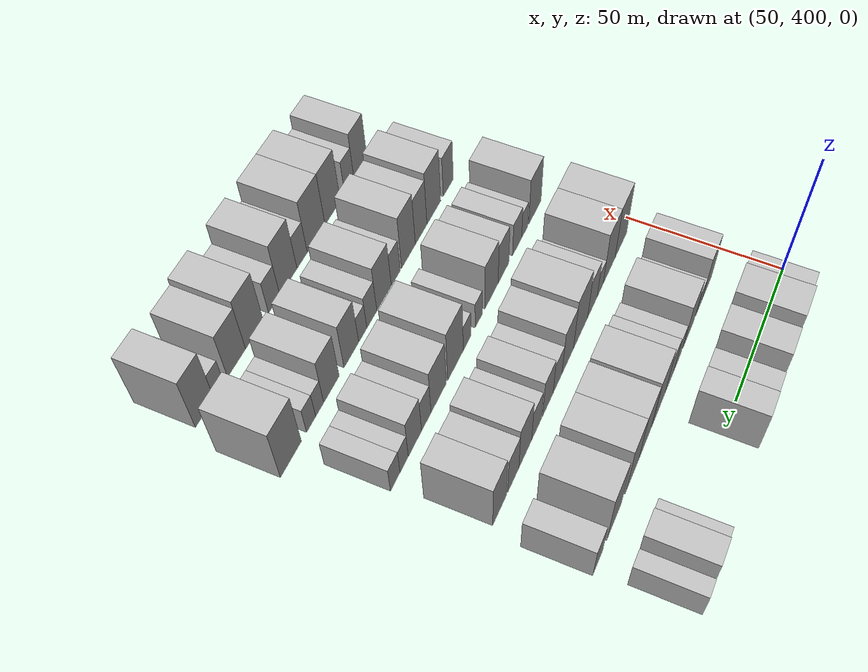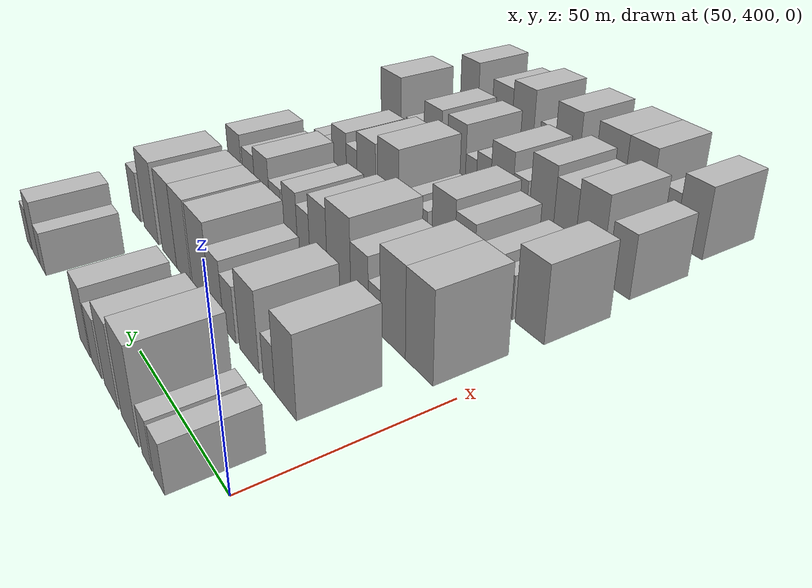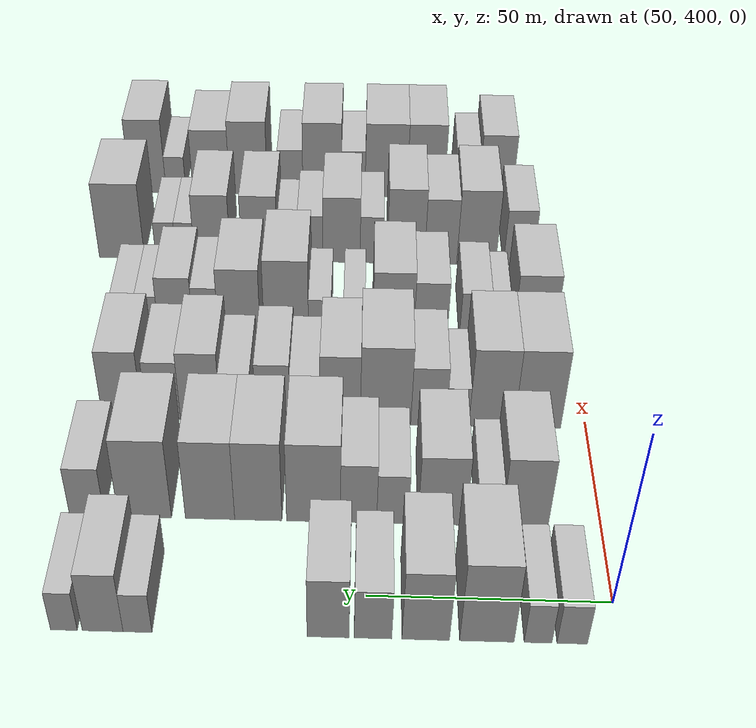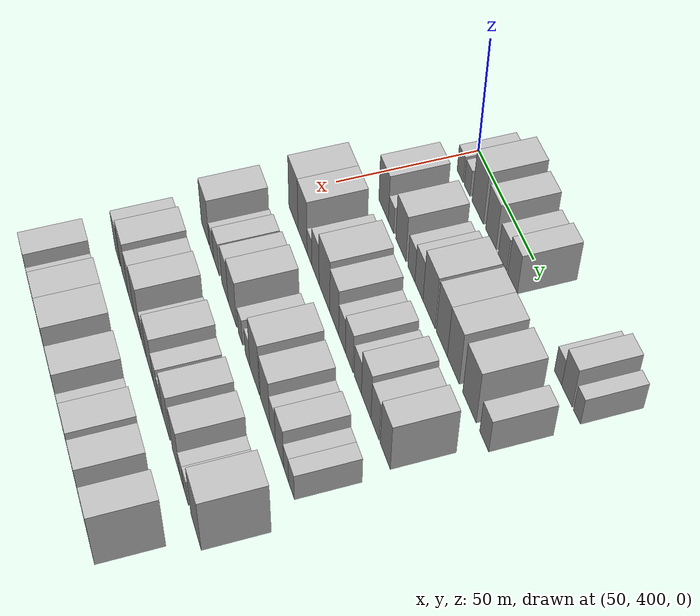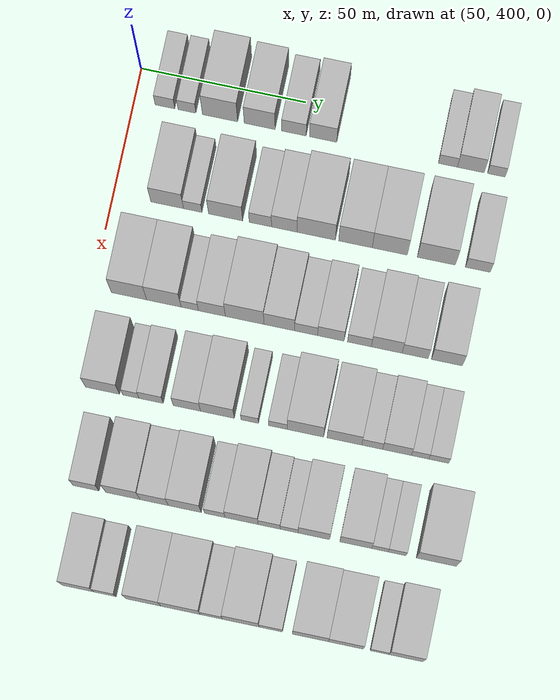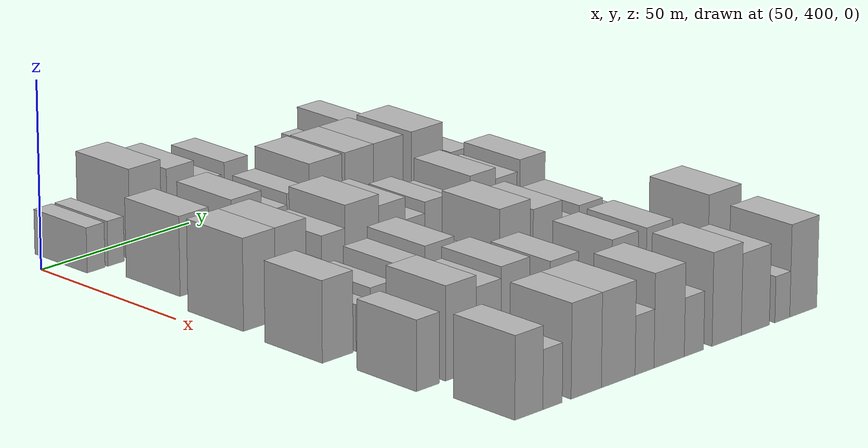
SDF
<sdf version="1.6">
 <world name="default">
  <model name="building_105">
   <static>1</static>
   <pose>50.0000 409.3364 0 0.000000 0.000000 0.000000</pose>
   <link name="link">
    <pose>0 0 6.00 0 0 0</pose>
    <collision name="collision"><geometry><box><size>20.0000 5.9762 12.0000</size></box></geometry></collision>
    <visual name="visual">
     <cast_shadows>0</cast_shadows>
     <geometry><box><size>20.0000 5.9762 12.0000</size></box></geometry>
     <material>
      <script>
       <uri>model://HANNAS_wall/materials/scripts</uri>
       <uri>model://HANNAS_wall/materials/textures</uri>
       <name>vrc/HANNAS_wall</name>
      </script>
     </material>
    </visual>
   </link>
  </model>
  <model name="building_106">
   <static>1</static>
   <pose>50.0000 416.0448 0 0.000000 0.000000 0.000000</pose>
   <link name="link">
    <pose>0 0 6.00 0 0 0</pose>
    <collision name="collision"><geometry><box><size>20.0000 5.4405 12.0000</size></box></geometry></collision>
    <visual name="visual">
     <cast_shadows>0</cast_shadows>
     <geometry><box><size>20.0000 5.4405 12.0000</size></box></geometry>
     <material>
      <script>
       <uri>model://HANNAS_wall/materials/scripts</uri>
       <uri>model://HANNAS_wall/materials/textures</uri>
       <name>vrc/HANNAS_wall</name>
      </script>
     </material>
    </visual>
   </link>
  </model>
  <model name="building_107">
   <static>1</static>
   <pose>50.0000 426.1194 0 0.000000 0.000000 0.000000</pose>
   <link name="link">
    <pose>0 0 12.00 0 0 0</pose>
    <collision name="collision"><geometry><box><size>20.0000 10.7088 24.0000</size></box></geometry></collision>
    <visual name="visual">
     <cast_shadows>0</cast_shadows>
     <geometry><box><size>20.0000 10.7088 24.0000</size></box></geometry>
     <material>
      <script>
       <uri>model://HANNAS_wall/materials/scripts</uri>
       <uri>model://HANNAS_wall/materials/textures</uri>
       <name>vrc/HANNAS_wall</name>
      </script>
     </material>
    </visual>
   </link>
  </model>
  <model name="building_108">
   <static>1</static>
   <pose>50.0000 438.1608 0 0.000000 0.000000 0.000000</pose>
   <link name="link">
    <pose>0 0 10.50 0 0 0</pose>
    <collision name="collision"><geometry><box><size>20.0000 9.3739 21.0000</size></box></geometry></collision>
    <visual name="visual">
     <cast_shadows>0</cast_shadows>
     <geometry><box><size>20.0000 9.3739 21.0000</size></box></geometry>
     <material>
      <script>
       <uri>model://HANNAS_wall/materials/scripts</uri>
       <uri>model://HANNAS_wall/materials/textures</uri>
       <name>vrc/HANNAS_wall</name>
      </script>
     </material>
    </visual>
   </link>
  </model>
  <model name="building_109">
   <static>1</static>
   <pose>50.0000 448.5703 0 0.000000 0.000000 0.000000</pose>
   <link name="link">
    <pose>0 0 7.50 0 0 0</pose>
    <collision name="collision"><geometry><box><size>20.0000 7.4451 15.0000</size></box></geometry></collision>
    <visual name="visual">
     <cast_shadows>0</cast_shadows>
     <geometry><box><size>20.0000 7.4451 15.0000</size></box></geometry>
     <material>
      <script>
       <uri>model://HANNAS_wall/materials/scripts</uri>
       <uri>model://HANNAS_wall/materials/textures</uri>
       <name>vrc/HANNAS_wall</name>
      </script>
     </material>
    </visual>
   </link>
  </model>
  <model name="building_110">
   <static>1</static>
   <pose>50.0000 457.4413 0 0.000000 0.000000 0.000000</pose>
   <link name="link">
    <pose>0 0 9.00 0 0 0</pose>
    <collision name="collision"><geometry><box><size>20.0000 8.2969 18.0000</size></box></geometry></collision>
    <visual name="visual">
     <cast_shadows>0</cast_shadows>
     <geometry><box><size>20.0000 8.2969 18.0000</size></box></geometry>
     <material>
      <script>
       <uri>model://HANNAS_wall/materials/scripts</uri>
       <uri>model://HANNAS_wall/materials/textures</uri>
       <name>vrc/HANNAS_wall</name>
      </script>
     </material>
    </visual>
   </link>
  </model>
  <model name="building_111">
   <static>1</static>
   <pose>50.0000 495.2459 0 0.000000 0.000000 0.000000</pose>
   <link name="link">
    <pose>0 0 6.00 0 0 0</pose>
    <collision name="collision"><geometry><box><size>20.0000 5.7707 12.0000</size></box></geometry></collision>
    <visual name="visual">
     <cast_shadows>0</cast_shadows>
     <geometry><box><size>20.0000 5.7707 12.0000</size></box></geometry>
     <material>
      <script>
       <uri>model://HANNAS_wall/materials/scripts</uri>
       <uri>model://HANNAS_wall/materials/textures</uri>
       <name>vrc/HANNAS_wall</name>
      </script>
     </material>
    </visual>
   </link>
  </model>
  <model name="building_112">
   <static>1</static>
   <pose>50.0000 502.1932 0 0.000000 0.000000 0.000000</pose>
   <link name="link">
    <pose>0 0 9.00 0 0 0</pose>
    <collision name="collision"><geometry><box><size>20.0000 8.1239 18.0000</size></box></geometry></collision>
    <visual name="visual">
     <cast_shadows>0</cast_shadows>
     <geometry><box><size>20.0000 8.1239 18.0000</size></box></geometry>
     <material>
      <script>
       <uri>model://HANNAS_wall/materials/scripts</uri>
       <uri>model://HANNAS_wall/materials/textures</uri>
       <name>vrc/HANNAS_wall</name>
      </script>
     </material>
    </visual>
   </link>
  </model>
  <model name="building_113">
   <static>1</static>
   <pose>50.0000 509.9212 0 0.000000 0.000000 0.000000</pose>
   <link name="link">
    <pose>0 0 6.00 0 0 0</pose>
    <collision name="collision"><geometry><box><size>20.0000 5.3322 12.0000</size></box></geometry></collision>
    <visual name="visual">
     <cast_shadows>0</cast_shadows>
     <geometry><box><size>20.0000 5.3322 12.0000</size></box></geometry>
     <material>
      <script>
       <uri>model://HANNAS_wall/materials/scripts</uri>
       <uri>model://HANNAS_wall/materials/textures</uri>
       <name>vrc/HANNAS_wall</name>
      </script>
     </material>
    </visual>
   </link>
  </model>
  <model name="building_212">
   <static>1</static>
   <pose>79.0000 416.3522 0 0.000000 0.000000 0.000000</pose>
   <link name="link">
    <pose>0 0 10.50 0 0 0</pose>
    <collision name="collision"><geometry><box><size>20.0000 9.8833 21.0000</size></box></geometry></collision>
    <visual name="visual">
     <cast_shadows>0</cast_shadows>
     <geometry><box><size>20.0000 9.8833 21.0000</size></box></geometry>
     <material>
      <script>
       <uri>model://HANNAS_wall/materials/scripts</uri>
       <uri>model://HANNAS_wall/materials/textures</uri>
       <name>vrc/HANNAS_wall</name>
      </script>
     </material>
    </visual>
   </link>
  </model>
  <model name="building_213">
   <static>1</static>
   <pose>79.0000 424.0821 0 0.000000 0.000000 0.000000</pose>
   <link name="link">
    <pose>0 0 6.00 0 0 0</pose>
    <collision name="collision"><geometry><box><size>20.0000 5.5764 12.0000</size></box></geometry></collision>
    <visual name="visual">
     <cast_shadows>0</cast_shadows>
     <geometry><box><size>20.0000 5.5764 12.0000</size></box></geometry>
     <material>
      <script>
       <uri>model://HANNAS_wall/materials/scripts</uri>
       <uri>model://HANNAS_wall/materials/textures</uri>
       <name>vrc/HANNAS_wall</name>
      </script>
     </material>
    </visual>
   </link>
  </model>
  <model name="building_214">
   <static>1</static>
   <pose>79.0000 434.0184 0 0.000000 0.000000 0.000000</pose>
   <link name="link">
    <pose>0 0 10.50 0 0 0</pose>
    <collision name="collision"><geometry><box><size>20.0000 10.2962 21.0000</size></box></geometry></collision>
    <visual name="visual">
     <cast_shadows>0</cast_shadows>
     <geometry><box><size>20.0000 10.2962 21.0000</size></box></geometry>
     <material>
      <script>
       <uri>model://HANNAS_wall/materials/scripts</uri>
       <uri>model://HANNAS_wall/materials/textures</uri>
       <name>vrc/HANNAS_wall</name>
      </script>
     </material>
    </visual>
   </link>
  </model>
  <model name="building_215">
   <static>1</static>
   <pose>79.0000 444.5506 0 0.000000 0.000000 0.000000</pose>
   <link name="link">
    <pose>0 0 7.50 0 0 0</pose>
    <collision name="collision"><geometry><box><size>20.0000 6.7683 15.0000</size></box></geometry></collision>
    <visual name="visual">
     <cast_shadows>0</cast_shadows>
     <geometry><box><size>20.0000 6.7683 15.0000</size></box></geometry>
     <material>
      <script>
       <uri>model://HANNAS_wall/materials/scripts</uri>
       <uri>model://HANNAS_wall/materials/textures</uri>
       <name>vrc/HANNAS_wall</name>
      </script>
     </material>
    </visual>
   </link>
  </model>
  <model name="building_216">
   <static>1</static>
   <pose>79.0000 451.8169 0 0.000000 0.000000 0.000000</pose>
   <link name="link">
    <pose>0 0 9.00 0 0 0</pose>
    <collision name="collision"><geometry><box><size>20.0000 7.7642 18.0000</size></box></geometry></collision>
    <visual name="visual">
     <cast_shadows>0</cast_shadows>
     <geometry><box><size>20.0000 7.7642 18.0000</size></box></geometry>
     <material>
      <script>
       <uri>model://HANNAS_wall/materials/scripts</uri>
       <uri>model://HANNAS_wall/materials/textures</uri>
       <name>vrc/HANNAS_wall</name>
      </script>
     </material>
    </visual>
   </link>
  </model>
  <model name="building_217">
   <static>1</static>
   <pose>79.0000 461.4473 0 0.000000 0.000000 0.000000</pose>
   <link name="link">
    <pose>0 0 12.00 0 0 0</pose>
    <collision name="collision"><geometry><box><size>20.0000 11.4967 24.0000</size></box></geometry></collision>
    <visual name="visual">
     <cast_shadows>0</cast_shadows>
     <geometry><box><size>20.0000 11.4967 24.0000</size></box></geometry>
     <material>
      <script>
       <uri>model://HANNAS_wall/materials/scripts</uri>
       <uri>model://HANNAS_wall/materials/textures</uri>
       <name>vrc/HANNAS_wall</name>
      </script>
     </material>
    </visual>
   </link>
  </model>
  <model name="building_218">
   <static>1</static>
   <pose>79.0000 473.2623 0 0.000000 0.000000 0.000000</pose>
   <link name="link">
    <pose>0 0 12.00 0 0 0</pose>
    <collision name="collision"><geometry><box><size>20.0000 10.1334 24.0000</size></box></geometry></collision>
    <visual name="visual">
     <cast_shadows>0</cast_shadows>
     <geometry><box><size>20.0000 10.1334 24.0000</size></box></geometry>
     <material>
      <script>
       <uri>model://HANNAS_wall/materials/scripts</uri>
       <uri>model://HANNAS_wall/materials/textures</uri>
       <name>vrc/HANNAS_wall</name>
      </script>
     </material>
    </visual>
   </link>
  </model>
  <model name="building_219">
   <static>1</static>
   <pose>79.0000 483.6215 0 0.000000 0.000000 0.000000</pose>
   <link name="link">
    <pose>0 0 12.00 0 0 0</pose>
    <collision name="collision"><geometry><box><size>20.0000 10.5850 24.0000</size></box></geometry></collision>
    <visual name="visual">
     <cast_shadows>0</cast_shadows>
     <geometry><box><size>20.0000 10.5850 24.0000</size></box></geometry>
     <material>
      <script>
       <uri>model://HANNAS_wall/materials/scripts</uri>
       <uri>model://HANNAS_wall/materials/textures</uri>
       <name>vrc/HANNAS_wall</name>
      </script>
     </material>
    </visual>
   </link>
  </model>
  <model name="building_220">
   <static>1</static>
   <pose>79.0000 497.6599 0 0.000000 0.000000 0.000000</pose>
   <link name="link">
    <pose>0 0 12.00 0 0 0</pose>
    <collision name="collision"><geometry><box><size>20.0000 11.4920 24.0000</size></box></geometry></collision>
    <visual name="visual">
     <cast_shadows>0</cast_shadows>
     <geometry><box><size>20.0000 11.4920 24.0000</size></box></geometry>
     <material>
      <script>
       <uri>model://HANNAS_wall/materials/scripts</uri>
       <uri>model://HANNAS_wall/materials/textures</uri>
       <name>vrc/HANNAS_wall</name>
      </script>
     </material>
    </visual>
   </link>
  </model>
  <model name="building_221">
   <static>1</static>
   <pose>79.0000 510.1510 0 0.000000 0.000000 0.000000</pose>
   <link name="link">
    <pose>0 0 7.50 0 0 0</pose>
    <collision name="collision"><geometry><box><size>20.0000 7.4901 15.0000</size></box></geometry></collision>
    <visual name="visual">
     <cast_shadows>0</cast_shadows>
     <geometry><box><size>20.0000 7.4901 15.0000</size></box></geometry>
     <material>
      <script>
       <uri>model://HANNAS_wall/materials/scripts</uri>
       <uri>model://HANNAS_wall/materials/textures</uri>
       <name>vrc/HANNAS_wall</name>
      </script>
     </material>
    </visual>
   </link>
  </model>
  <model name="building_320">
   <static>1</static>
   <pose>108.0000 411.1583 0 0.000000 0.000000 0.000000</pose>
   <link name="link">
    <pose>0 0 12.00 0 0 0</pose>
    <collision name="collision"><geometry><box><size>20.0000 10.6546 24.0000</size></box></geometry></collision>
    <visual name="visual">
     <cast_shadows>0</cast_shadows>
     <geometry><box><size>20.0000 10.6546 24.0000</size></box></geometry>
     <material>
      <script>
       <uri>model://HANNAS_wall/materials/scripts</uri>
       <uri>model://HANNAS_wall/materials/textures</uri>
       <name>vrc/HANNAS_wall</name>
      </script>
     </material>
    </visual>
   </link>
  </model>
  <model name="building_321">
   <static>1</static>
   <pose>108.0000 421.6841 0 0.000000 0.000000 0.000000</pose>
   <link name="link">
    <pose>0 0 12.00 0 0 0</pose>
    <collision name="collision"><geometry><box><size>20.0000 10.3969 24.0000</size></box></geometry></collision>
    <visual name="visual">
     <cast_shadows>0</cast_shadows>
     <geometry><box><size>20.0000 10.3969 24.0000</size></box></geometry>
     <material>
      <script>
       <uri>model://HANNAS_wall/materials/scripts</uri>
       <uri>model://HANNAS_wall/materials/textures</uri>
       <name>vrc/HANNAS_wall</name>
      </script>
     </material>
    </visual>
   </link>
  </model>
  <model name="building_322">
   <static>1</static>
   <pose>108.0000 429.4937 0 0.000000 0.000000 0.000000</pose>
   <link name="link">
    <pose>0 0 6.00 0 0 0</pose>
    <collision name="collision"><geometry><box><size>20.0000 5.2224 12.0000</size></box></geometry></collision>
    <visual name="visual">
     <cast_shadows>0</cast_shadows>
     <geometry><box><size>20.0000 5.2224 12.0000</size></box></geometry>
     <material>
      <script>
       <uri>model://HANNAS_wall/materials/scripts</uri>
       <uri>model://HANNAS_wall/materials/textures</uri>
       <name>vrc/HANNAS_wall</name>
      </script>
     </material>
    </visual>
   </link>
  </model>
  <model name="building_323">
   <static>1</static>
   <pose>108.0000 436.1508 0 0.000000 0.000000 0.000000</pose>
   <link name="link">
    <pose>0 0 9.00 0 0 0</pose>
    <collision name="collision"><geometry><box><size>20.0000 8.0917 18.0000</size></box></geometry></collision>
    <visual name="visual">
     <cast_shadows>0</cast_shadows>
     <geometry><box><size>20.0000 8.0917 18.0000</size></box></geometry>
     <material>
      <script>
       <uri>model://HANNAS_wall/materials/scripts</uri>
       <uri>model://HANNAS_wall/materials/textures</uri>
       <name>vrc/HANNAS_wall</name>
      </script>
     </material>
    </visual>
   </link>
  </model>
  <model name="building_324">
   <static>1</static>
   <pose>108.0000 446.0132 0 0.000000 0.000000 0.000000</pose>
   <link name="link">
    <pose>0 0 12.00 0 0 0</pose>
    <collision name="collision"><geometry><box><size>20.0000 11.6332 24.0000</size></box></geometry></collision>
    <visual name="visual">
     <cast_shadows>0</cast_shadows>
     <geometry><box><size>20.0000 11.6332 24.0000</size></box></geometry>
     <material>
      <script>
       <uri>model://HANNAS_wall/materials/scripts</uri>
       <uri>model://HANNAS_wall/materials/textures</uri>
       <name>vrc/HANNAS_wall</name>
      </script>
     </material>
    </visual>
   </link>
  </model>
  <model name="building_325">
   <static>1</static>
   <pose>108.0000 456.4489 0 0.000000 0.000000 0.000000</pose>
   <link name="link">
    <pose>0 0 10.50 0 0 0</pose>
    <collision name="collision"><geometry><box><size>20.0000 9.2382 21.0000</size></box></geometry></collision>
    <visual name="visual">
     <cast_shadows>0</cast_shadows>
     <geometry><box><size>20.0000 9.2382 21.0000</size></box></geometry>
     <material>
      <script>
       <uri>model://HANNAS_wall/materials/scripts</uri>
       <uri>model://HANNAS_wall/materials/textures</uri>
       <name>vrc/HANNAS_wall</name>
      </script>
     </material>
    </visual>
   </link>
  </model>
  <model name="building_326">
   <static>1</static>
   <pose>108.0000 464.5048 0 0.000000 0.000000 0.000000</pose>
   <link name="link">
    <pose>0 0 7.50 0 0 0</pose>
    <collision name="collision"><geometry><box><size>20.0000 6.8735 15.0000</size></box></geometry></collision>
    <visual name="visual">
     <cast_shadows>0</cast_shadows>
     <geometry><box><size>20.0000 6.8735 15.0000</size></box></geometry>
     <material>
      <script>
       <uri>model://HANNAS_wall/materials/scripts</uri>
       <uri>model://HANNAS_wall/materials/textures</uri>
       <name>vrc/HANNAS_wall</name>
      </script>
     </material>
    </visual>
   </link>
  </model>
  <model name="building_327">
   <static>1</static>
   <pose>108.0000 471.9131 0 0.000000 0.000000 0.000000</pose>
   <link name="link">
    <pose>0 0 9.00 0 0 0</pose>
    <collision name="collision"><geometry><box><size>20.0000 7.9431 18.0000</size></box></geometry></collision>
    <visual name="visual">
     <cast_shadows>0</cast_shadows>
     <geometry><box><size>20.0000 7.9431 18.0000</size></box></geometry>
     <material>
      <script>
       <uri>model://HANNAS_wall/materials/scripts</uri>
       <uri>model://HANNAS_wall/materials/textures</uri>
       <name>vrc/HANNAS_wall</name>
      </script>
     </material>
    </visual>
   </link>
  </model>
  <model name="building_328">
   <static>1</static>
   <pose>108.0000 480.4613 0 0.000000 0.000000 0.000000</pose>
   <link name="link">
    <pose>0 0 7.50 0 0 0</pose>
    <collision name="collision"><geometry><box><size>20.0000 7.1532 15.0000</size></box></geometry></collision>
    <visual name="visual">
     <cast_shadows>0</cast_shadows>
     <geometry><box><size>20.0000 7.1532 15.0000</size></box></geometry>
     <material>
      <script>
       <uri>model://HANNAS_wall/materials/scripts</uri>
       <uri>model://HANNAS_wall/materials/textures</uri>
       <name>vrc/HANNAS_wall</name>
      </script>
     </material>
    </visual>
   </link>
  </model>
  <model name="building_329">
   <static>1</static>
   <pose>108.0000 488.6572 0 0.000000 0.000000 0.000000</pose>
   <link name="link">
    <pose>0 0 10.50 0 0 0</pose>
    <collision name="collision"><geometry><box><size>20.0000 9.2387 21.0000</size></box></geometry></collision>
    <visual name="visual">
     <cast_shadows>0</cast_shadows>
     <geometry><box><size>20.0000 9.2387 21.0000</size></box></geometry>
     <material>
      <script>
       <uri>model://HANNAS_wall/materials/scripts</uri>
       <uri>model://HANNAS_wall/materials/textures</uri>
       <name>vrc/HANNAS_wall</name>
      </script>
     </material>
    </visual>
   </link>
  </model>
  <model name="building_330">
   <static>1</static>
   <pose>108.0000 497.1750 0 0.000000 0.000000 0.000000</pose>
   <link name="link">
    <pose>0 0 9.00 0 0 0</pose>
    <collision name="collision"><geometry><box><size>20.0000 7.7969 18.0000</size></box></geometry></collision>
    <visual name="visual">
     <cast_shadows>0</cast_shadows>
     <geometry><box><size>20.0000 7.7969 18.0000</size></box></geometry>
     <material>
      <script>
       <uri>model://HANNAS_wall/materials/scripts</uri>
       <uri>model://HANNAS_wall/materials/textures</uri>
       <name>vrc/HANNAS_wall</name>
      </script>
     </material>
    </visual>
   </link>
  </model>
  <model name="building_331">
   <static>1</static>
   <pose>108.0000 506.7233 0 0.000000 0.000000 0.000000</pose>
   <link name="link">
    <pose>0 0 10.50 0 0 0</pose>
    <collision name="collision"><geometry><box><size>20.0000 9.2996 21.0000</size></box></geometry></collision>
    <visual name="visual">
     <cast_shadows>0</cast_shadows>
     <geometry><box><size>20.0000 9.2996 21.0000</size></box></geometry>
     <material>
      <script>
       <uri>model://HANNAS_wall/materials/scripts</uri>
       <uri>model://HANNAS_wall/materials/textures</uri>
       <name>vrc/HANNAS_wall</name>
      </script>
     </material>
    </visual>
   </link>
  </model>
  <model name="building_430">
   <static>1</static>
   <pose>137.0000 409.5972 0 0.000000 0.000000 0.000000</pose>
   <link name="link">
    <pose>0 0 10.50 0 0 0</pose>
    <collision name="collision"><geometry><box><size>20.0000 10.2215 21.0000</size></box></geometry></collision>
    <visual name="visual">
     <cast_shadows>0</cast_shadows>
     <geometry><box><size>20.0000 10.2215 21.0000</size></box></geometry>
     <material>
      <script>
       <uri>model://HANNAS_wall/materials/scripts</uri>
       <uri>model://HANNAS_wall/materials/textures</uri>
       <name>vrc/HANNAS_wall</name>
      </script>
     </material>
    </visual>
   </link>
  </model>
  <model name="building_431">
   <static>1</static>
   <pose>137.0000 418.1350 0 0.000000 0.000000 0.000000</pose>
   <link name="link">
    <pose>0 0 6.00 0 0 0</pose>
    <collision name="collision"><geometry><box><size>20.0000 4.8541 12.0000</size></box></geometry></collision>
    <visual name="visual">
     <cast_shadows>0</cast_shadows>
     <geometry><box><size>20.0000 4.8541 12.0000</size></box></geometry>
     <material>
      <script>
       <uri>model://HANNAS_wall/materials/scripts</uri>
       <uri>model://HANNAS_wall/materials/textures</uri>
       <name>vrc/HANNAS_wall</name>
      </script>
     </material>
    </visual>
   </link>
  </model>
  <model name="building_432">
   <static>1</static>
   <pose>137.0000 424.1971 0 0.000000 0.000000 0.000000</pose>
   <link name="link">
    <pose>0 0 7.50 0 0 0</pose>
    <collision name="collision"><geometry><box><size>20.0000 7.2701 15.0000</size></box></geometry></collision>
    <visual name="visual">
     <cast_shadows>0</cast_shadows>
     <geometry><box><size>20.0000 7.2701 15.0000</size></box></geometry>
     <material>
      <script>
       <uri>model://HANNAS_wall/materials/scripts</uri>
       <uri>model://HANNAS_wall/materials/textures</uri>
       <name>vrc/HANNAS_wall</name>
      </script>
     </material>
    </visual>
   </link>
  </model>
  <model name="building_433">
   <static>1</static>
   <pose>137.0000 434.9247 0 0.000000 0.000000 0.000000</pose>
   <link name="link">
    <pose>0 0 9.00 0 0 0</pose>
    <collision name="collision"><geometry><box><size>20.0000 8.1852 18.0000</size></box></geometry></collision>
    <visual name="visual">
     <cast_shadows>0</cast_shadows>
     <geometry><box><size>20.0000 8.1852 18.0000</size></box></geometry>
     <material>
      <script>
       <uri>model://HANNAS_wall/materials/scripts</uri>
       <uri>model://HANNAS_wall/materials/textures</uri>
       <name>vrc/HANNAS_wall</name>
      </script>
     </material>
    </visual>
   </link>
  </model>
  <model name="building_434">
   <static>1</static>
   <pose>137.0000 444.0648 0 0.000000 0.000000 0.000000</pose>
   <link name="link">
    <pose>0 0 10.50 0 0 0</pose>
    <collision name="collision"><geometry><box><size>20.0000 10.0949 21.0000</size></box></geometry></collision>
    <visual name="visual">
     <cast_shadows>0</cast_shadows>
     <geometry><box><size>20.0000 10.0949 21.0000</size></box></geometry>
     <material>
      <script>
       <uri>model://HANNAS_wall/materials/scripts</uri>
       <uri>model://HANNAS_wall/materials/textures</uri>
       <name>vrc/HANNAS_wall</name>
      </script>
     </material>
    </visual>
   </link>
  </model>
  <model name="building_435">
   <static>1</static>
   <pose>137.0000 453.7311 0 0.000000 0.000000 0.000000</pose>
   <link name="link">
    <pose>0 0 6.00 0 0 0</pose>
    <collision name="collision"><geometry><box><size>20.0000 5.2378 12.0000</size></box></geometry></collision>
    <visual name="visual">
     <cast_shadows>0</cast_shadows>
     <geometry><box><size>20.0000 5.2378 12.0000</size></box></geometry>
     <material>
      <script>
       <uri>model://HANNAS_wall/materials/scripts</uri>
       <uri>model://HANNAS_wall/materials/textures</uri>
       <name>vrc/HANNAS_wall</name>
      </script>
     </material>
    </visual>
   </link>
  </model>
  <model name="building_436">
   <static>1</static>
   <pose>137.0000 462.1327 0 0.000000 0.000000 0.000000</pose>
   <link name="link">
    <pose>0 0 6.00 0 0 0</pose>
    <collision name="collision"><geometry><box><size>20.0000 5.5653 12.0000</size></box></geometry></collision>
    <visual name="visual">
     <cast_shadows>0</cast_shadows>
     <geometry><box><size>20.0000 5.5653 12.0000</size></box></geometry>
     <material>
      <script>
       <uri>model://HANNAS_wall/materials/scripts</uri>
       <uri>model://HANNAS_wall/materials/textures</uri>
       <name>vrc/HANNAS_wall</name>
      </script>
     </material>
    </visual>
   </link>
  </model>
  <model name="building_437">
   <static>1</static>
   <pose>137.0000 470.3744 0 0.000000 0.000000 0.000000</pose>
   <link name="link">
    <pose>0 0 12.00 0 0 0</pose>
    <collision name="collision"><geometry><box><size>20.0000 10.9181 24.0000</size></box></geometry></collision>
    <visual name="visual">
     <cast_shadows>0</cast_shadows>
     <geometry><box><size>20.0000 10.9181 24.0000</size></box></geometry>
     <material>
      <script>
       <uri>model://HANNAS_wall/materials/scripts</uri>
       <uri>model://HANNAS_wall/materials/textures</uri>
       <name>vrc/HANNAS_wall</name>
      </script>
     </material>
    </visual>
   </link>
  </model>
  <model name="building_438">
   <static>1</static>
   <pose>137.0000 482.0041 0 0.000000 0.000000 0.000000</pose>
   <link name="link">
    <pose>0 0 10.50 0 0 0</pose>
    <collision name="collision"><geometry><box><size>20.0000 10.3412 21.0000</size></box></geometry></collision>
    <visual name="visual">
     <cast_shadows>0</cast_shadows>
     <geometry><box><size>20.0000 10.3412 21.0000</size></box></geometry>
     <material>
      <script>
       <uri>model://HANNAS_wall/materials/scripts</uri>
       <uri>model://HANNAS_wall/materials/textures</uri>
       <name>vrc/HANNAS_wall</name>
      </script>
     </material>
    </visual>
   </link>
  </model>
  <model name="building_439">
   <static>1</static>
   <pose>137.0000 490.2877 0 0.000000 0.000000 0.000000</pose>
   <link name="link">
    <pose>0 0 7.50 0 0 0</pose>
    <collision name="collision"><geometry><box><size>20.0000 6.2259 15.0000</size></box></geometry></collision>
    <visual name="visual">
     <cast_shadows>0</cast_shadows>
     <geometry><box><size>20.0000 6.2259 15.0000</size></box></geometry>
     <material>
      <script>
       <uri>model://HANNAS_wall/materials/scripts</uri>
       <uri>model://HANNAS_wall/materials/textures</uri>
       <name>vrc/HANNAS_wall</name>
      </script>
     </material>
    </visual>
   </link>
  </model>
  <model name="building_440">
   <static>1</static>
   <pose>137.0000 497.6775 0 0.000000 0.000000 0.000000</pose>
   <link name="link">
    <pose>0 0 9.00 0 0 0</pose>
    <collision name="collision"><geometry><box><size>20.0000 8.5538 18.0000</size></box></geometry></collision>
    <visual name="visual">
     <cast_shadows>0</cast_shadows>
     <geometry><box><size>20.0000 8.5538 18.0000</size></box></geometry>
     <material>
      <script>
       <uri>model://HANNAS_wall/materials/scripts</uri>
       <uri>model://HANNAS_wall/materials/textures</uri>
       <name>vrc/HANNAS_wall</name>
      </script>
     </material>
    </visual>
   </link>
  </model>
  <model name="building_441">
   <static>1</static>
   <pose>137.0000 504.5688 0 0.000000 0.000000 0.000000</pose>
   <link name="link">
    <pose>0 0 6.00 0 0 0</pose>
    <collision name="collision"><geometry><box><size>20.0000 5.2287 12.0000</size></box></geometry></collision>
    <visual name="visual">
     <cast_shadows>0</cast_shadows>
     <geometry><box><size>20.0000 5.2287 12.0000</size></box></geometry>
     <material>
      <script>
       <uri>model://HANNAS_wall/materials/scripts</uri>
       <uri>model://HANNAS_wall/materials/textures</uri>
       <name>vrc/HANNAS_wall</name>
      </script>
     </material>
    </visual>
   </link>
  </model>
  <model name="building_442">
   <static>1</static>
   <pose>137.0000 510.1523 0 0.000000 0.000000 0.000000</pose>
   <link name="link">
    <pose>0 0 6.00 0 0 0</pose>
    <collision name="collision"><geometry><box><size>20.0000 5.9384 12.0000</size></box></geometry></collision>
    <visual name="visual">
     <cast_shadows>0</cast_shadows>
     <geometry><box><size>20.0000 5.9384 12.0000</size></box></geometry>
     <material>
      <script>
       <uri>model://HANNAS_wall/materials/scripts</uri>
       <uri>model://HANNAS_wall/materials/textures</uri>
       <name>vrc/HANNAS_wall</name>
      </script>
     </material>
    </visual>
   </link>
  </model>
  <model name="building_550">
   <static>1</static>
   <pose>166.0000 411.1539 0 0.000000 0.000000 0.000000</pose>
   <link name="link">
    <pose>0 0 9.00 0 0 0</pose>
    <collision name="collision"><geometry><box><size>20.0000 7.7200 18.0000</size></box></geometry></collision>
    <visual name="visual">
     <cast_shadows>0</cast_shadows>
     <geometry><box><size>20.0000 7.7200 18.0000</size></box></geometry>
     <material>
      <script>
       <uri>model://HANNAS_wall/materials/scripts</uri>
       <uri>model://HANNAS_wall/materials/textures</uri>
       <name>vrc/HANNAS_wall</name>
      </script>
     </material>
    </visual>
   </link>
  </model>
  <model name="building_551">
   <static>1</static>
   <pose>166.0000 422.1294 0 0.000000 0.000000 0.000000</pose>
   <link name="link">
    <pose>0 0 12.00 0 0 0</pose>
    <collision name="collision"><geometry><box><size>20.0000 10.2309 24.0000</size></box></geometry></collision>
    <visual name="visual">
     <cast_shadows>0</cast_shadows>
     <geometry><box><size>20.0000 10.2309 24.0000</size></box></geometry>
     <material>
      <script>
       <uri>model://HANNAS_wall/materials/scripts</uri>
       <uri>model://HANNAS_wall/materials/textures</uri>
       <name>vrc/HANNAS_wall</name>
      </script>
     </material>
    </visual>
   </link>
  </model>
  <model name="building_552">
   <static>1</static>
   <pose>166.0000 431.4752 0 0.000000 0.000000 0.000000</pose>
   <link name="link">
    <pose>0 0 10.50 0 0 0</pose>
    <collision name="collision"><geometry><box><size>20.0000 8.4608 21.0000</size></box></geometry></collision>
    <visual name="visual">
     <cast_shadows>0</cast_shadows>
     <geometry><box><size>20.0000 8.4608 21.0000</size></box></geometry>
     <material>
      <script>
       <uri>model://HANNAS_wall/materials/scripts</uri>
       <uri>model://HANNAS_wall/materials/textures</uri>
       <name>vrc/HANNAS_wall</name>
      </script>
     </material>
    </visual>
   </link>
  </model>
  <model name="building_553">
   <static>1</static>
   <pose>166.0000 440.5981 0 0.000000 0.000000 0.000000</pose>
   <link name="link">
    <pose>0 0 12.00 0 0 0</pose>
    <collision name="collision"><geometry><box><size>20.0000 9.7850 24.0000</size></box></geometry></collision>
    <visual name="visual">
     <cast_shadows>0</cast_shadows>
     <geometry><box><size>20.0000 9.7850 24.0000</size></box></geometry>
     <material>
      <script>
       <uri>model://HANNAS_wall/materials/scripts</uri>
       <uri>model://HANNAS_wall/materials/textures</uri>
       <name>vrc/HANNAS_wall</name>
      </script>
     </material>
    </visual>
   </link>
  </model>
  <model name="building_554">
   <static>1</static>
   <pose>166.0000 449.5463 0 0.000000 0.000000 0.000000</pose>
   <link name="link">
    <pose>0 0 7.50 0 0 0</pose>
    <collision name="collision"><geometry><box><size>20.0000 6.1113 15.0000</size></box></geometry></collision>
    <visual name="visual">
     <cast_shadows>0</cast_shadows>
     <geometry><box><size>20.0000 6.1113 15.0000</size></box></geometry>
     <material>
      <script>
       <uri>model://HANNAS_wall/materials/scripts</uri>
       <uri>model://HANNAS_wall/materials/textures</uri>
       <name>vrc/HANNAS_wall</name>
      </script>
     </material>
    </visual>
   </link>
  </model>
  <model name="building_555">
   <static>1</static>
   <pose>166.0000 457.5064 0 0.000000 0.000000 0.000000</pose>
   <link name="link">
    <pose>0 0 10.50 0 0 0</pose>
    <collision name="collision"><geometry><box><size>20.0000 9.8090 21.0000</size></box></geometry></collision>
    <visual name="visual">
     <cast_shadows>0</cast_shadows>
     <geometry><box><size>20.0000 9.8090 21.0000</size></box></geometry>
     <material>
      <script>
       <uri>model://HANNAS_wall/materials/scripts</uri>
       <uri>model://HANNAS_wall/materials/textures</uri>
       <name>vrc/HANNAS_wall</name>
      </script>
     </material>
    </visual>
   </link>
  </model>
  <model name="building_556">
   <static>1</static>
   <pose>166.0000 465.7018 0 0.000000 0.000000 0.000000</pose>
   <link name="link">
    <pose>0 0 7.50 0 0 0</pose>
    <collision name="collision"><geometry><box><size>20.0000 6.5818 15.0000</size></box></geometry></collision>
    <visual name="visual">
     <cast_shadows>0</cast_shadows>
     <geometry><box><size>20.0000 6.5818 15.0000</size></box></geometry>
     <material>
      <script>
       <uri>model://HANNAS_wall/materials/scripts</uri>
       <uri>model://HANNAS_wall/materials/textures</uri>
       <name>vrc/HANNAS_wall</name>
      </script>
     </material>
    </visual>
   </link>
  </model>
  <model name="building_557">
   <static>1</static>
   <pose>166.0000 471.6588 0 0.000000 0.000000 0.000000</pose>
   <link name="link">
    <pose>0 0 6.00 0 0 0</pose>
    <collision name="collision"><geometry><box><size>20.0000 5.3322 12.0000</size></box></geometry></collision>
    <visual name="visual">
     <cast_shadows>0</cast_shadows>
     <geometry><box><size>20.0000 5.3322 12.0000</size></box></geometry>
     <material>
      <script>
       <uri>model://HANNAS_wall/materials/scripts</uri>
       <uri>model://HANNAS_wall/materials/textures</uri>
       <name>vrc/HANNAS_wall</name>
      </script>
     </material>
    </visual>
   </link>
  </model>
  <model name="building_558">
   <static>1</static>
   <pose>166.0000 479.0026 0 0.000000 0.000000 0.000000</pose>
   <link name="link">
    <pose>0 0 10.50 0 0 0</pose>
    <collision name="collision"><geometry><box><size>20.0000 9.3553 21.0000</size></box></geometry></collision>
    <visual name="visual">
     <cast_shadows>0</cast_shadows>
     <geometry><box><size>20.0000 9.3553 21.0000</size></box></geometry>
     <material>
      <script>
       <uri>model://HANNAS_wall/materials/scripts</uri>
       <uri>model://HANNAS_wall/materials/textures</uri>
       <name>vrc/HANNAS_wall</name>
      </script>
     </material>
    </visual>
   </link>
  </model>
  <model name="building_559">
   <static>1</static>
   <pose>166.0000 491.4167 0 0.000000 0.000000 0.000000</pose>
   <link name="link">
    <pose>0 0 10.50 0 0 0</pose>
    <collision name="collision"><geometry><box><size>20.0000 9.4729 21.0000</size></box></geometry></collision>
    <visual name="visual">
     <cast_shadows>0</cast_shadows>
     <geometry><box><size>20.0000 9.4729 21.0000</size></box></geometry>
     <material>
      <script>
       <uri>model://HANNAS_wall/materials/scripts</uri>
       <uri>model://HANNAS_wall/materials/textures</uri>
       <name>vrc/HANNAS_wall</name>
      </script>
     </material>
    </visual>
   </link>
  </model>
  <model name="building_560">
   <static>1</static>
   <pose>166.0000 498.5799 0 0.000000 0.000000 0.000000</pose>
   <link name="link">
    <pose>0 0 6.00 0 0 0</pose>
    <collision name="collision"><geometry><box><size>20.0000 4.8534 12.0000</size></box></geometry></collision>
    <visual name="visual">
     <cast_shadows>0</cast_shadows>
     <geometry><box><size>20.0000 4.8534 12.0000</size></box></geometry>
     <material>
      <script>
       <uri>model://HANNAS_wall/materials/scripts</uri>
       <uri>model://HANNAS_wall/materials/textures</uri>
       <name>vrc/HANNAS_wall</name>
      </script>
     </material>
    </visual>
   </link>
  </model>
  <model name="building_561">
   <static>1</static>
   <pose>166.0000 503.6906 0 0.000000 0.000000 0.000000</pose>
   <link name="link">
    <pose>0 0 6.00 0 0 0</pose>
    <collision name="collision"><geometry><box><size>20.0000 5.3681 12.0000</size></box></geometry></collision>
    <visual name="visual">
     <cast_shadows>0</cast_shadows>
     <geometry><box><size>20.0000 5.3681 12.0000</size></box></geometry>
     <material>
      <script>
       <uri>model://HANNAS_wall/materials/scripts</uri>
       <uri>model://HANNAS_wall/materials/textures</uri>
       <name>vrc/HANNAS_wall</name>
      </script>
     </material>
    </visual>
   </link>
  </model>
  <model name="building_562">
   <static>1</static>
   <pose>166.0000 515.3443 0 0.000000 0.000000 0.000000</pose>
   <link name="link">
    <pose>0 0 12.00 0 0 0</pose>
    <collision name="collision"><geometry><box><size>20.0000 11.9393 24.0000</size></box></geometry></collision>
    <visual name="visual">
     <cast_shadows>0</cast_shadows>
     <geometry><box><size>20.0000 11.9393 24.0000</size></box></geometry>
     <material>
      <script>
       <uri>model://HANNAS_wall/materials/scripts</uri>
       <uri>model://HANNAS_wall/materials/textures</uri>
       <name>vrc/HANNAS_wall</name>
      </script>
     </material>
    </visual>
   </link>
  </model>
  <model name="building_670">
   <static>1</static>
   <pose>195.0000 415.2921 0 0.000000 0.000000 0.000000</pose>
   <link name="link">
    <pose>0 0 10.50 0 0 0</pose>
    <collision name="collision"><geometry><box><size>20.0000 9.3748 21.0000</size></box></geometry></collision>
    <visual name="visual">
     <cast_shadows>0</cast_shadows>
     <geometry><box><size>20.0000 9.3748 21.0000</size></box></geometry>
     <material>
      <script>
       <uri>model://HANNAS_wall/materials/scripts</uri>
       <uri>model://HANNAS_wall/materials/textures</uri>
       <name>vrc/HANNAS_wall</name>
      </script>
     </material>
    </visual>
   </link>
  </model>
  <model name="building_671">
   <static>1</static>
   <pose>195.0000 423.2566 0 0.000000 0.000000 0.000000</pose>
   <link name="link">
    <pose>0 0 7.50 0 0 0</pose>
    <collision name="collision"><geometry><box><size>20.0000 6.5543 15.0000</size></box></geometry></collision>
    <visual name="visual">
     <cast_shadows>0</cast_shadows>
     <geometry><box><size>20.0000 6.5543 15.0000</size></box></geometry>
     <material>
      <script>
       <uri>model://HANNAS_wall/materials/scripts</uri>
       <uri>model://HANNAS_wall/materials/textures</uri>
       <name>vrc/HANNAS_wall</name>
      </script>
     </material>
    </visual>
   </link>
  </model>
  <model name="building_672">
   <static>1</static>
   <pose>195.0000 434.7076 0 0.000000 0.000000 0.000000</pose>
   <link name="link">
    <pose>0 0 12.00 0 0 0</pose>
    <collision name="collision"><geometry><box><size>20.0000 10.3477 24.0000</size></box></geometry></collision>
    <visual name="visual">
     <cast_shadows>0</cast_shadows>
     <geometry><box><size>20.0000 10.3477 24.0000</size></box></geometry>
     <material>
      <script>
       <uri>model://HANNAS_wall/materials/scripts</uri>
       <uri>model://HANNAS_wall/materials/textures</uri>
       <name>vrc/HANNAS_wall</name>
      </script>
     </material>
    </visual>
   </link>
  </model>
  <model name="building_673">
   <static>1</static>
   <pose>195.0000 445.7149 0 0.000000 0.000000 0.000000</pose>
   <link name="link">
    <pose>0 0 12.00 0 0 0</pose>
    <collision name="collision"><geometry><box><size>20.0000 11.6669 24.0000</size></box></geometry></collision>
    <visual name="visual">
     <cast_shadows>0</cast_shadows>
     <geometry><box><size>20.0000 11.6669 24.0000</size></box></geometry>
     <material>
      <script>
       <uri>model://HANNAS_wall/materials/scripts</uri>
       <uri>model://HANNAS_wall/materials/textures</uri>
       <name>vrc/HANNAS_wall</name>
      </script>
     </material>
    </visual>
   </link>
  </model>
  <model name="building_674">
   <static>1</static>
   <pose>195.0000 454.8523 0 0.000000 0.000000 0.000000</pose>
   <link name="link">
    <pose>0 0 7.50 0 0 0</pose>
    <collision name="collision"><geometry><box><size>20.0000 6.6079 15.0000</size></box></geometry></collision>
    <visual name="visual">
     <cast_shadows>0</cast_shadows>
     <geometry><box><size>20.0000 6.6079 15.0000</size></box></geometry>
     <material>
      <script>
       <uri>model://HANNAS_wall/materials/scripts</uri>
       <uri>model://HANNAS_wall/materials/textures</uri>
       <name>vrc/HANNAS_wall</name>
      </script>
     </material>
    </visual>
   </link>
  </model>
  <model name="building_675">
   <static>1</static>
   <pose>195.0000 463.5104 0 0.000000 0.000000 0.000000</pose>
   <link name="link">
    <pose>0 0 12.00 0 0 0</pose>
    <collision name="collision"><geometry><box><size>20.0000 10.7083 24.0000</size></box></geometry></collision>
    <visual name="visual">
     <cast_shadows>0</cast_shadows>
     <geometry><box><size>20.0000 10.7083 24.0000</size></box></geometry>
     <material>
      <script>
       <uri>model://HANNAS_wall/materials/scripts</uri>
       <uri>model://HANNAS_wall/materials/textures</uri>
       <name>vrc/HANNAS_wall</name>
      </script>
     </material>
    </visual>
   </link>
  </model>
  <model name="building_676">
   <static>1</static>
   <pose>195.0000 472.3283 0 0.000000 0.000000 0.000000</pose>
   <link name="link">
    <pose>0 0 7.50 0 0 0</pose>
    <collision name="collision"><geometry><box><size>20.0000 6.9276 15.0000</size></box></geometry></collision>
    <visual name="visual">
     <cast_shadows>0</cast_shadows>
     <geometry><box><size>20.0000 6.9276 15.0000</size></box></geometry>
     <material>
      <script>
       <uri>model://HANNAS_wall/materials/scripts</uri>
       <uri>model://HANNAS_wall/materials/textures</uri>
       <name>vrc/HANNAS_wall</name>
      </script>
     </material>
    </visual>
   </link>
  </model>
  <model name="building_677">
   <static>1</static>
   <pose>195.0000 484.0656 0 0.000000 0.000000 0.000000</pose>
   <link name="link">
    <pose>0 0 12.00 0 0 0</pose>
    <collision name="collision"><geometry><box><size>20.0000 10.5469 24.0000</size></box></geometry></collision>
    <visual name="visual">
     <cast_shadows>0</cast_shadows>
     <geometry><box><size>20.0000 10.5469 24.0000</size></box></geometry>
     <material>
      <script>
       <uri>model://HANNAS_wall/materials/scripts</uri>
       <uri>model://HANNAS_wall/materials/textures</uri>
       <name>vrc/HANNAS_wall</name>
      </script>
     </material>
    </visual>
   </link>
  </model>
  <model name="building_678">
   <static>1</static>
   <pose>195.0000 494.4939 0 0.000000 0.000000 0.000000</pose>
   <link name="link">
    <pose>0 0 10.50 0 0 0</pose>
    <collision name="collision"><geometry><box><size>20.0000 10.3098 21.0000</size></box></geometry></collision>
    <visual name="visual">
     <cast_shadows>0</cast_shadows>
     <geometry><box><size>20.0000 10.3098 21.0000</size></box></geometry>
     <material>
      <script>
       <uri>model://HANNAS_wall/materials/scripts</uri>
       <uri>model://HANNAS_wall/materials/textures</uri>
       <name>vrc/HANNAS_wall</name>
      </script>
     </material>
    </visual>
   </link>
  </model>
  <model name="building_679">
   <static>1</static>
   <pose>195.0000 504.4070 0 0.000000 0.000000 0.000000</pose>
   <link name="link">
    <pose>0 0 6.00 0 0 0</pose>
    <collision name="collision"><geometry><box><size>20.0000 5.5165 12.0000</size></box></geometry></collision>
    <visual name="visual">
     <cast_shadows>0</cast_shadows>
     <geometry><box><size>20.0000 5.5165 12.0000</size></box></geometry>
     <material>
      <script>
       <uri>model://HANNAS_wall/materials/scripts</uri>
       <uri>model://HANNAS_wall/materials/textures</uri>
       <name>vrc/HANNAS_wall</name>
      </script>
     </material>
    </visual>
   </link>
  </model>
  <model name="building_680">
   <static>1</static>
   <pose>195.0000 512.1935 0 0.000000 0.000000 0.000000</pose>
   <link name="link">
    <pose>0 0 12.00 0 0 0</pose>
    <collision name="collision"><geometry><box><size>20.0000 10.0564 24.0000</size></box></geometry></collision>
    <visual name="visual">
     <cast_shadows>0</cast_shadows>
     <geometry><box><size>20.0000 10.0564 24.0000</size></box></geometry>
     <material>
      <script>
       <uri>model://HANNAS_wall/materials/scripts</uri>
       <uri>model://HANNAS_wall/materials/textures</uri>
       <name>vrc/HANNAS_wall</name>
      </script>
     </material>
    </visual>
   </link>
  </model>
 </world>
</sdf>
